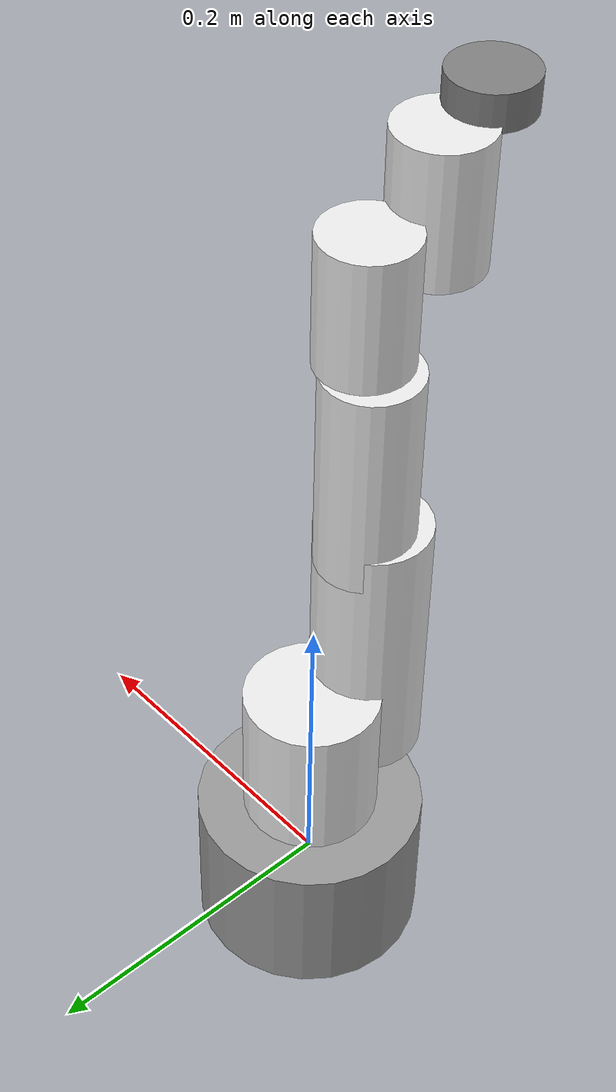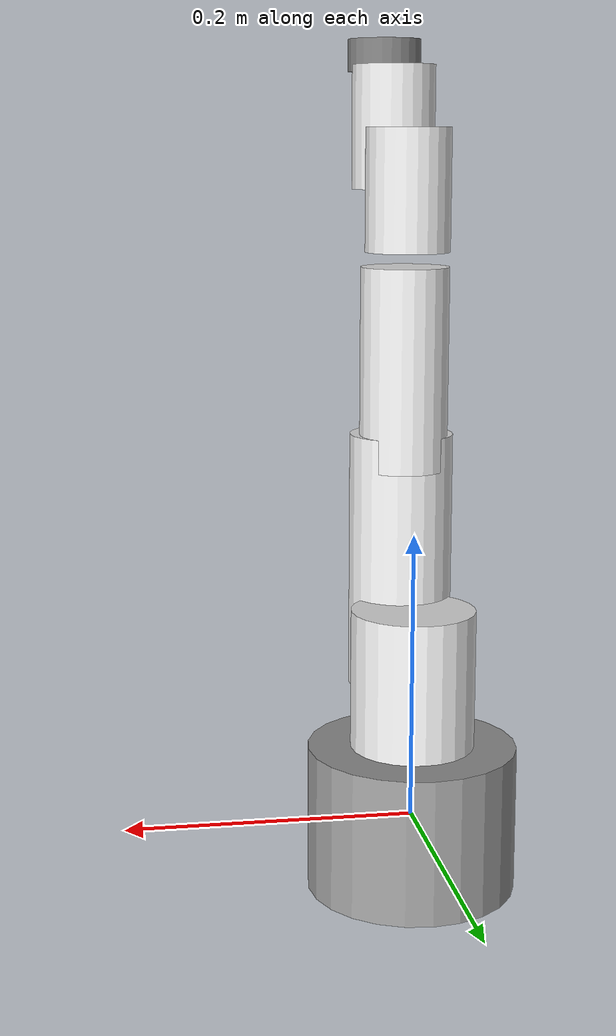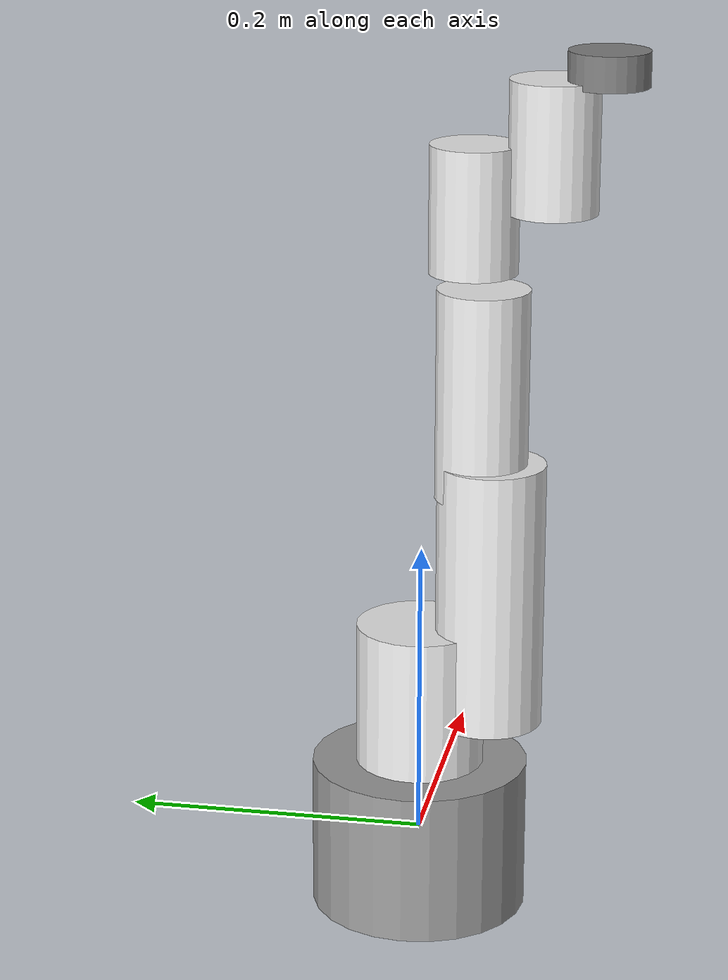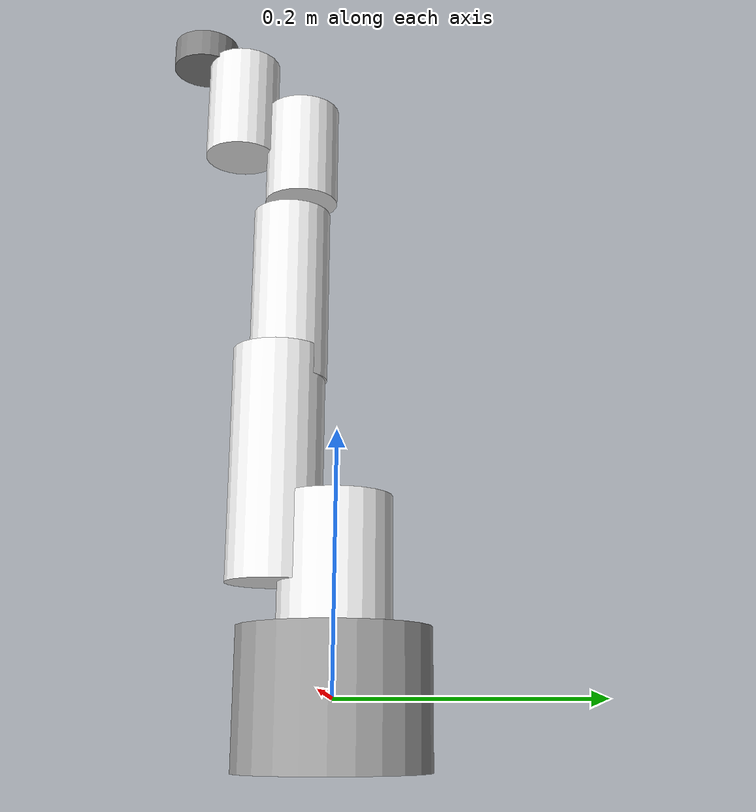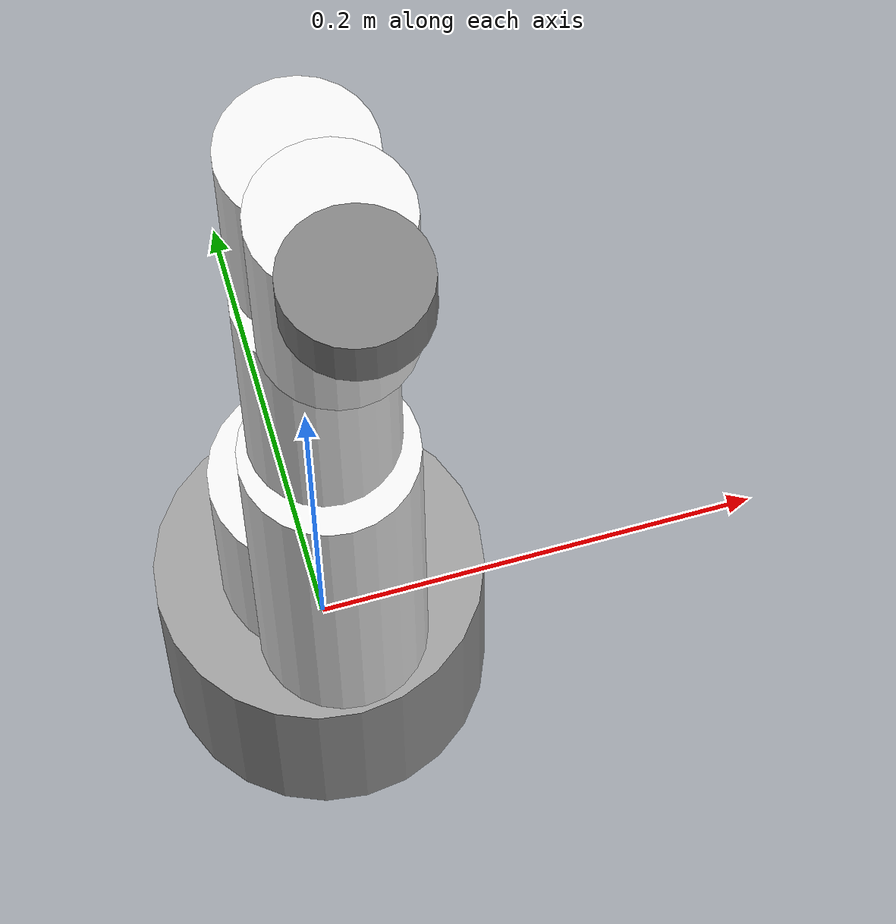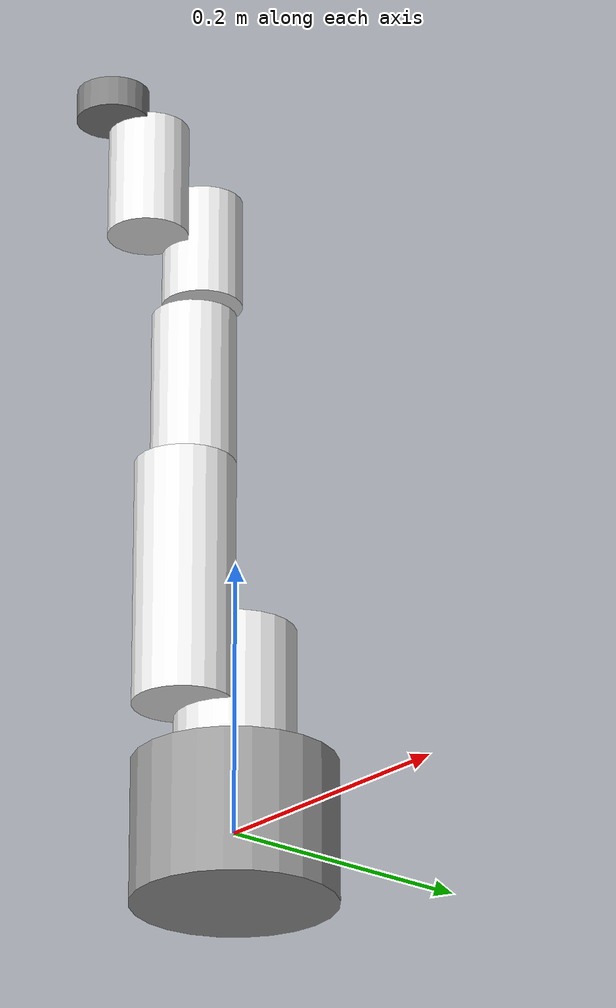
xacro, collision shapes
<?xml version="1.0" ?>
<robot xmlns:xacro="http://wiki.ros.org/xacro" name="mycobot_320pi">

	<!-- Reference Files: https://github.com/elephantrobotics/mycobot_ros/ -->

	<!-- Provide a global reference frame for the robotic arm in simulation (Gazebo)
		or visualization (RViz) environments
	-->
	<link name="world"/>

	<!-- ****************** ROBOT CONSTANTS *******************************  -->
	<!-- Source: https://www.elephantrobotics.com/en/mycobot280-for-arduino-specifications-en/ -->
	<!-- Numbers are estimated when necessary -->
	<xacro:property name="effort" value="5.0"/> <!-- TODO: effort is 1000.00?? -->
	<xacro:property name="velocity" value="2.792527"/>

	<!-- ********** LINKS ********** -->

    <!-- Define the base plate of the robotic arm
    	The inertial values below were taken from link1 (with slight modification.
		They are just placeholder values. -->
	<link name="base">
		<inertial>
			<origin xyz="0 0 0.0" rpy="0 0 0"/>
			<mass value="0.33"/>
			<inertia
				ixx="0.000784" ixy="0.0" ixz="0.0"
				iyy="0.000867" iyz="0.0"
				izz="0.001598"/>
		</inertial>
		<visual>
			<geometry>
				<mesh filename="file://$(find mycobot_description)/urdf/mycobot_320_pi_2022/base.dae"/>
			</geometry>
			<origin xyz = "0.0 0 0 " rpy = " 0 0 1.5708"/>
		</visual>
		<collision>
			<origin xyz = "0.0 0 0 " rpy = " 0 0 1.5708"/>
			<geometry>
				<cylinder length="0.102" radius="0.0725"/>
			</geometry>
		</collision>
	</link>

	<!--Define the first link of the robotic arm. Each link represents a solid part of the robot.-->
	<link name="link1">
		<inertial>
			<origin xyz="0 0 0.0" rpy="0 0 0"/>
			<mass value="0.12"/>
			<inertia
				ixx="0.000148" ixy="0.0" ixz="0.0"
				iyy="0.000148" iyz="0.0"
				izz="0.000096"/>
		</inertial>
		<visual>
			<geometry>
				<mesh filename="file://$(find mycobot_description)/urdf/mycobot_320_pi_2022/link1.dae"/>
			</geometry>
			<origin xyz = "0.0 0.0 -0.078 " rpy = " 0 0 1.5708"/>
		</visual>
		<collision>
			<origin xyz = "0.0 0.0 -0.078 " rpy = " 0 0 1.5708"/>
			<geometry>
				<cylinder length="0.106" radius="0.043"/>
			</geometry>
		</collision>
	</link>

	<!-- Define the second link of the robotic arm, and so on.-->
	<link name="link2">
		<inertial>
			<origin xyz="0 0 0.0" rpy="0 0 0"/>
			<mass value="0.19"/>
			<inertia
				ixx="0.000148" ixy="0.0" ixz="0.0"
				iyy="0.000148" iyz="0.0"
				izz="0.000096"/>
		</inertial>
		<visual>
			<geometry>
				<mesh filename="file://$(find mycobot_description)/urdf/mycobot_320_pi_2022/link2.dae"/>
			</geometry>
			<origin xyz = "0.0 0 -0.04 " rpy = " 0 1.5708 0"/>
		</visual>
		<collision>
			<origin xyz = "0.0 0 -0.04 " rpy = " 0 1.5708 0"/>
			<geometry>
				<cylinder length="0.18" radius="0.036"/>
			</geometry>
		</collision>
	</link>

	<link name="link3">
		<inertial>
			<origin xyz="0 0 0.0" rpy="0 0 0"/>
		  	<mass value="0.16"/>
			<inertia
			  ixx="0.000148" ixy="0.0" ixz="0.0"
			  iyy="0.000148" iyz="0.0"
			  izz="0.000096"/>
		</inertial>
		<visual>
      		<geometry>
        		<mesh filename="file://$(find mycobot_description)/urdf/mycobot_320_pi_2022/link3.dae"/>
      		</geometry>
     		<origin xyz = "0.0 0.0 0.039 " rpy = " 1.5708 1.5708 1.5708"/>
    	</visual>
    	<collision>
      		<origin xyz = "0.0 0.0 0.039 " rpy = " 1.5708 1.5708 1.5708"/>
      		<geometry>
        		<cylinder length="0.14" radius="0.0305"/>
      		</geometry>
    	</collision>
	</link>

	<link name="link4">
		<inertial>
		  	<origin xyz="0 0 0.0" rpy="0 0 0"/>
			<mass value="0.124"/>
			<inertia
			  	ixx="0.000103" ixy="0.0" ixz="0.0"
			  	iyy="0.000103" iyz="0.0"
			  	izz="0.000096"/>
		</inertial>
		<visual>
			<geometry>
				<mesh filename="file://$(find mycobot_description)/urdf/mycobot_320_pi_2022/link4.dae"/>
			</geometry>
			<origin xyz = "0.0 -0.0024 -0.05 " rpy = " 1.5708 1.5708 0"/>
		</visual>
		<collision>
			<origin xyz = "0.0 -0.0024 -0.05" rpy = " 1.5708 1.5708 0"/>
			<geometry>
				<cylinder length="0.083" radius="0.029"/>
			</geometry>
		</collision>
	</link>

	<link name="link5">
		<inertial>
			<origin xyz="0 0 0.0" rpy="0 0 0"/>
		  	<mass value="0.11"/>
			<inertia
			  ixx="0.000103" ixy="0.0" ixz="0.0"
			  iyy="0.000103" iyz="0.0"
			  izz="0.000096"/>
		</inertial>
		<visual>
			<geometry>
				<mesh filename="file://$(find mycobot_description)/urdf/mycobot_320_pi_2022/link5.dae"/>
			</geometry>
			<origin xyz = "0.0 0.0 -0.05 " rpy = " 0  0 -1.5708"/>
		</visual>
		<collision>
			<origin xyz = "0.0 0.0 -0.05 " rpy = " 0  0 -1.5708"/>
			<geometry>
				<cylinder length="0.0849" radius="0.029"/>
			</geometry>
		</collision>
	</link>

	<link name="link6">
		<inertial>
			<origin xyz="0 0 0.0" rpy="0 0 0"/>
		  	<mass value="0.0739"/>
			<inertia
			  ixx="0.00006649" ixy="0.0" ixz="0.0"
			  iyy="0.00006649" iyz="0.0"
			  izz="0.000096"/>
		</inertial>

		<visual>
			<geometry>
				<mesh filename="file://$(find mycobot_description)/urdf/mycobot_320_pi_2022/link6.dae"/>
			</geometry>
			<material name = "grey">
				<color rgba = "0.5 0.5 0.5 1"/>
			</material>
				<origin xyz = "0.0 0.0 -0.022 " rpy = " 1.5708 1.5708 0"/>
		</visual>

		<collision>
			<origin xyz = "0.0 0.0 -0.022 " rpy = " 1.5708 1.5708 0"/>
			<geometry>
				<cylinder length="0.0225" radius="0.026"/>
		</geometry>
		</collision>
	</link>

    <!-- ********** COLORS ********** -->
    <gazebo reference="base">
        <material>Gazebo/Grey</material>
    </gazebo>
    <gazebo reference="link1">
        <material>Gazebo/White</material>
    </gazebo>
    <gazebo reference="link2">
        <material>Gazebo/White</material>
    </gazebo>
    <gazebo reference="link3">
        <material>Gazebo/White</material>
    </gazebo>
    <gazebo reference="link4">
        <material>Gazebo/White</material>
    </gazebo>
    <gazebo reference="link5">
        <material>Gazebo/White</material>
    </gazebo>
    <gazebo reference="link6">
        <material>Gazebo/White</material>
    </gazebo>

	<!-- ********** JOINTS ********** -->

	<!-- Attach the robot base to the world frame with no initial offset or rotation. -->
	<joint name="virtual_joint" type="fixed">
		<parent link="world"/>
		<child link="base"/>
		<origin xyz= "0 0 0" rpy = "0 0 0"/>
	</joint>

	<joint name="joint2_to_joint1" type="revolute">
		<axis xyz="0 0 1"/>
		<limit effort = "${effort}" lower = "-2.96" upper = "2.96" velocity = "${velocity}"/>
		<parent link="base"/>
		<child link="link1"/>
		<origin xyz= "0 0 0.173" rpy = "0 0 0"/>
        <dynamics damping="12.0" friction="6.0"/>
	</joint>

	<joint name="joint3_to_joint2" type="revolute">
		<axis xyz="0 0 1"/>
		<limit effort = "${effort}" lower = "-2.79" upper = "2.79" velocity = "${velocity}"/>
		<parent link="link1"/>
		<child link="link2"/>
		<origin xyz= "0 -0.086 0" rpy = "0 -1.57080  1.57080"/>
        <dynamics damping="12.0" friction="6.0"/>
	</joint>

	<joint name="joint4_to_joint3" type="revolute">
		<axis xyz=" 0 0 1"/>
		<limit effort = "${effort}" lower = "-2.79" upper = "2.79" velocity = "${velocity}"/>
		<parent link="link2"/>
		<child link="link3"/>
		<origin xyz= "0.13635 0 -0.086   " rpy = "0 0 0"/>
        <dynamics damping="12.0" friction="6.0"/>
	</joint>

	<joint name="joint5_to_joint4" type="revolute">
		<axis xyz=" 0 0 1"/>
		<limit effort = "${effort}" lower = "-2.79" upper = "2.79" velocity = "${velocity}"/>
		<parent link="link3"/>
		<child link="link4"/>
    	<origin xyz= "0.1195 0  0.082" rpy = "0 0 1.57080"/>
        <dynamics damping="12.0" friction="6.0"/>
	</joint>

	<joint name="joint6_to_joint5" type="revolute">
		<axis xyz=" 0 0 1"/>
		<limit effort = "${effort}" lower = "-2.96" upper = "2.96" velocity = "${velocity}"/>
		<parent link="link4"/>
		<child link="link5"/>
    	<origin xyz= "0 -0.09415 0" rpy = "1.57080 0 0"/>
        <dynamics damping="7.0" friction="4.0"/>
	</joint>

	<joint name="joint6output_to_joint6" type="revolute">
		<axis xyz=" 0 0 1"/>
		<limit effort = "${effort}" lower = "-3.05" upper = "3.05" velocity = "${velocity}"/>
		<parent link="link5"/>
		<child link="link6"/>
    	<origin xyz= "0 0.055 0" rpy = "-1.57080 0 0 "/>
        <dynamics damping="3.0" friction="3.0"/>
	</joint>

	<!-- The mimic element means this joint will follow the movements of the
		gripper_controller joint.
	-->

	<!-- ********** PLUGINS ********** -->
    <gazebo>
        <plugin name="gazebo_ros_joint_state_publisher" filename="libgazebo_ros_joint_state_publisher.so">
            <update_rate>20</update_rate>
            <joint_name>joint2_to_joint1</joint_name>
            <joint_name>joint3_to_joint2</joint_name>
            <joint_name>joint4_to_joint3</joint_name>
            <joint_name>joint5_to_joint4</joint_name>
            <joint_name>joint6_to_joint5</joint_name>
            <joint_name>joint6output_to_joint6</joint_name>
        </plugin>
    </gazebo>

    <gazebo>
        <plugin name="gazebo_ros_joint_pose_trajectory" filename="libgazebo_ros_joint_pose_trajectory.so">
            <update_rate>20</update_rate>
        </plugin>
    </gazebo>

</robot>
